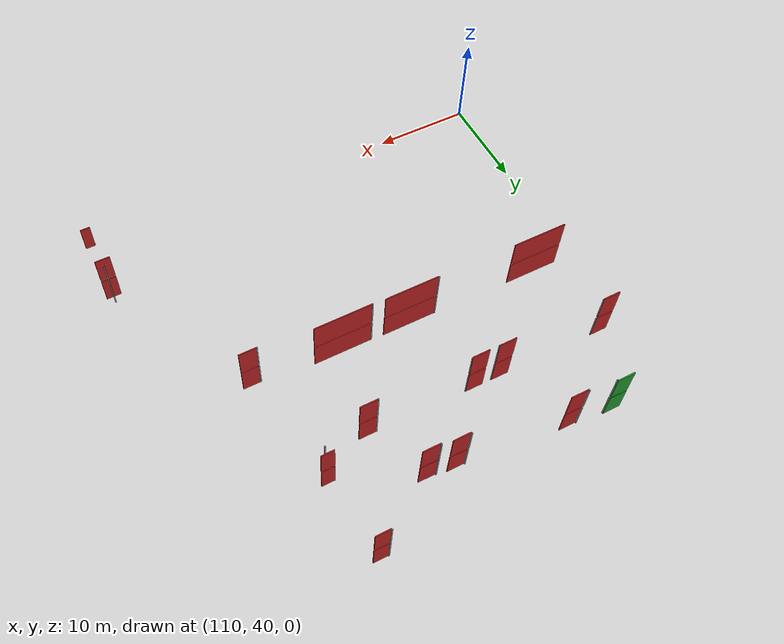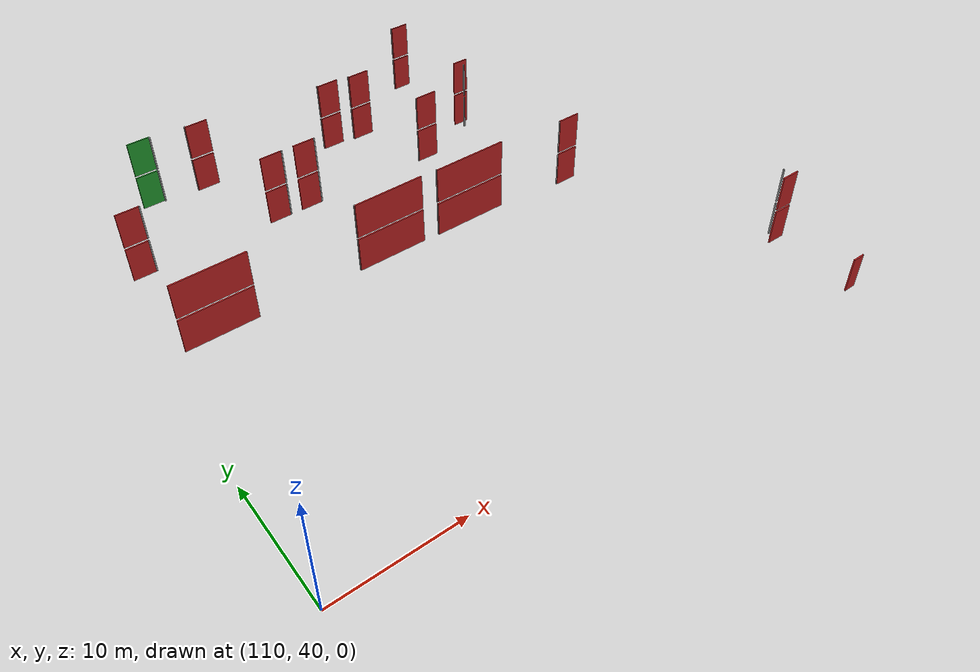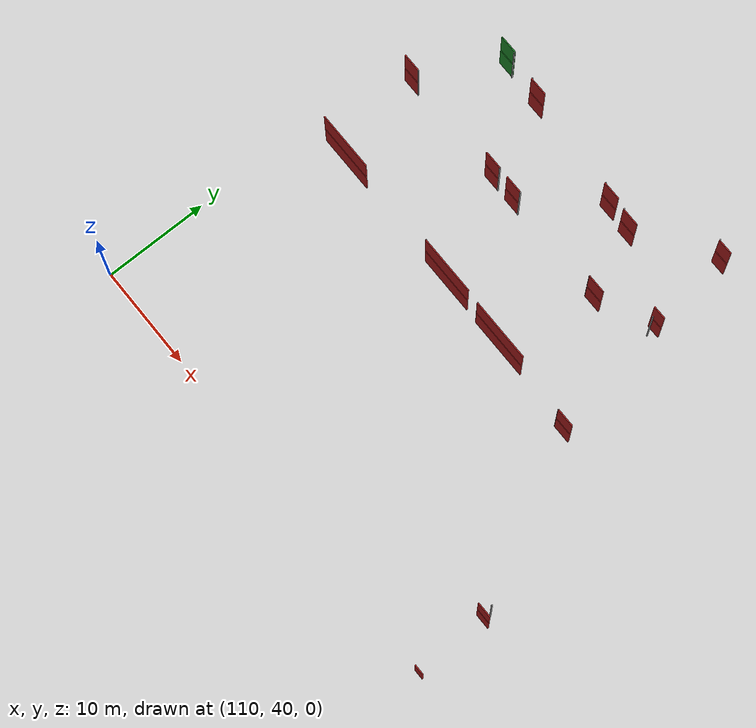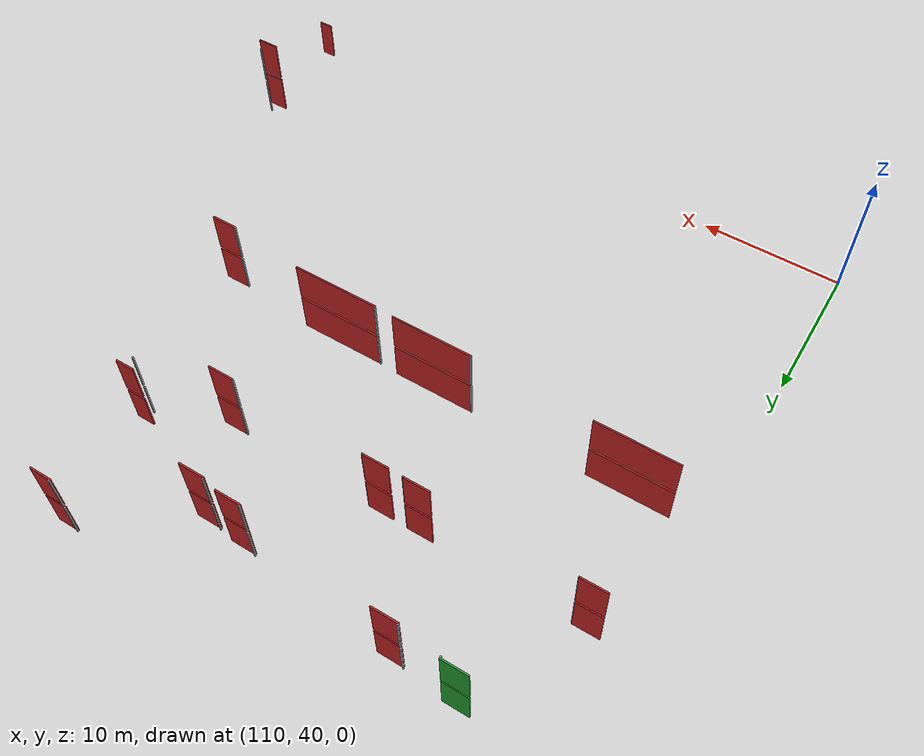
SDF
<sdf version="1.6">
 <world name="default">
  <model name="door_153.8_39.5_0.0">
   <static>false</static>
   <pose>153.77499999999418 38.99500000011176 1.5 0 0 0</pose>
   <link name="door_link">
    <gravity>false</gravity>
    <visual name="door_visual">
     <geometry><box><size>0.9960923654221514 0.1 3</size></box></geometry>
     <material>
      <script><uri>file://media/materials/scripts/gazebo.material</uri><name>Gazebo/Red</name></script>
     </material>
    </visual>
   </link>
  </model>
  <model name="pivot_153.8_46.7_0.0">
   <static>true</static>
   <pose>153.75 46.669999999925494 1.5 0 0 0</pose>
   <link name="pivot_link">
    <visual name="pivot_visual"><geometry><box><size>0.1 0.1 3</size></box></geometry></visual>
   </link>
  </model>
  <model name="door_153.8_46.7_0.0">
   <static>false</static>
   <pose>153.6600000000035 45.92999999993481 1.5 0 0 0</pose>
   <link name="door_link">
    <gravity>false</gravity>
    <visual name="door_visual">
     <geometry><box><size>1.4909057649436974 0.1 3</size></box></geometry>
     <material>
      <script><uri>file://media/materials/scripts/gazebo.material</uri><name>Gazebo/Red</name></script>
     </material>
    </visual>
   </link>
  </model>
  <model name="pivot_134.6_76.9_0.0">
   <static>true</static>
   <pose>134.59999999997672 76.87999999988824 1.5 0 0 0</pose>
   <link name="pivot_link">
    <visual name="pivot_visual"><geometry><box><size>0.1 0.1 3</size></box></geometry></visual>
   </link>
  </model>
  <model name="door_134.6_76.9_0.0">
   <static>false</static>
   <pose>135.49499999999534 76.79000000003725 1.5 0 0 0</pose>
   <link name="door_link">
    <gravity>false</gravity>
    <visual name="door_visual">
     <geometry><box><size>1.799027515083101 0.1 3</size></box></geometry>
     <material>
      <script><uri>file://media/materials/scripts/gazebo.material</uri><name>Gazebo/Red</name></script>
     </material>
    </visual>
   </link>
  </model>
  <model name="pivot_131.8_77.2_0.0">
   <static>true</static>
   <pose>131.80999999999767 77.16000000014901 1.5 0 0 0</pose>
   <link name="pivot_link">
    <visual name="pivot_visual"><geometry><box><size>0.1 0.1 3</size></box></geometry></visual>
   </link>
  </model>
  <model name="door_131.8_77.2_0.0">
   <static>false</static>
   <pose>132.7049999999872 77.07000000006519 1.5 0 0 0</pose>
   <link name="door_link">
    <gravity>false</gravity>
    <visual name="door_visual">
     <geometry><box><size>1.7990275150717767 0.1 3</size></box></geometry>
     <material>
      <script><uri>file://media/materials/scripts/gazebo.material</uri><name>Gazebo/Red</name></script>
     </material>
    </visual>
   </link>
  </model>
  <model name="pivot_120.6_78.3_0.0">
   <static>true</static>
   <pose>120.64000000001397 78.29999999981374 1.5 0 0 0</pose>
   <link name="pivot_link">
    <visual name="pivot_visual"><geometry><box><size>0.1 0.1 3</size></box></geometry></visual>
   </link>
  </model>
  <model name="door_120.6_78.3_0.0">
   <static>false</static>
   <pose>121.54000000000815 78.20999999996275 1.5 0 0 0</pose>
   <link name="door_link">
    <gravity>false</gravity>
    <visual name="door_visual">
     <geometry><box><size>1.808977611760522 0.1 3</size></box></geometry>
     <material>
      <script><uri>file://media/materials/scripts/gazebo.material</uri><name>Gazebo/Red</name></script>
     </material>
    </visual>
   </link>
  </model>
  <model name="pivot_117.9_78.6_0.0">
   <static>true</static>
   <pose>117.88000000000466 78.56999999983236 1.5 0 0 0</pose>
   <link name="pivot_link">
    <visual name="pivot_visual"><geometry><box><size>0.1 0.1 3</size></box></geometry></visual>
   </link>
  </model>
  <model name="door_117.9_78.6_0.0">
   <static>false</static>
   <pose>116.98499999998603 78.65999999968335 1.5 0 0 0</pose>
   <link name="door_link">
    <gravity>false</gravity>
    <visual name="door_visual">
     <geometry><box><size>1.799027515083101 0.1 3</size></box></geometry>
     <material>
      <script><uri>file://media/materials/scripts/gazebo.material</uri><name>Gazebo/Green</name></script>
     </material>
    </visual>
   </link>
  </model>
  <model name="pivot_141.8_81.4_0.0">
   <static>true</static>
   <pose>141.79999999998836 81.41000000014901 1.5 0 0 0</pose>
   <link name="pivot_link">
    <visual name="pivot_visual"><geometry><box><size>0.1 0.1 3</size></box></geometry></visual>
   </link>
  </model>
  <model name="door_141.8_81.4_0.0">
   <static>false</static>
   <pose>142.54999999998836 81.33499999996275 1.5 0 0 0</pose>
   <link name="door_link">
    <gravity>false</gravity>
    <visual name="door_visual">
     <geometry><box><size>1.5074813432052014 0.1 3</size></box></geometry>
     <material>
      <script><uri>file://media/materials/scripts/gazebo.material</uri><name>Gazebo/Red</name></script>
     </material>
    </visual>
   </link>
  </model>
  <model name="pivot_137.3_70.8_0.0">
   <static>true</static>
   <pose>137.30999999999767 70.79000000003725 1.5 0 0 0</pose>
   <link name="pivot_link">
    <visual name="pivot_visual"><geometry><box><size>0.1 0.1 3</size></box></geometry></visual>
   </link>
  </model>
  <model name="door_137.3_70.8_0.0">
   <static>false</static>
   <pose>138.2149999999965 70.78000000002794 1.5 0 0 0</pose>
   <link name="door_link">
    <gravity>false</gravity>
    <visual name="door_visual">
     <geometry><box><size>1.810110493862824 0.1 3</size></box></geometry>
     <material>
      <script><uri>file://media/materials/scripts/gazebo.material</uri><name>Gazebo/Red</name></script>
     </material>
    </visual>
   </link>
  </model>
  <model name="pivot_128.0_70.9_0.0">
   <static>true</static>
   <pose>127.95000000001164 70.93999999994412 1.5 0 0 0</pose>
   <link name="pivot_link">
    <visual name="pivot_visual"><geometry><box><size>0.1 0.1 3</size></box></geometry></visual>
   </link>
  </model>
  <model name="door_128.0_70.9_0.0">
   <static>false</static>
   <pose>127.05000000001746 70.9550000000745 1.5 0 0 0</pose>
   <link name="door_link">
    <gravity>false</gravity>
    <visual name="door_visual">
     <geometry><box><size>1.8002499826340055 0.1 3</size></box></geometry>
     <material>
      <script><uri>file://media/materials/scripts/gazebo.material</uri><name>Gazebo/Red</name></script>
     </material>
    </visual>
   </link>
  </model>
  <model name="pivot_125.2_71.0_0.0">
   <static>true</static>
   <pose>125.1699999999837 70.97999999998137 1.5 0 0 0</pose>
   <link name="pivot_link">
    <visual name="pivot_visual"><geometry><box><size>0.1 0.1 3</size></box></geometry></visual>
   </link>
  </model>
  <model name="door_125.2_71.0_0.0">
   <static>false</static>
   <pose>124.26499999998487 70.98999999999069 1.5 0 0 0</pose>
   <link name="door_link">
    <gravity>false</gravity>
    <visual name="door_visual">
     <geometry><box><size>1.810110493862824 0.1 3</size></box></geometry>
     <material>
      <script><uri>file://media/materials/scripts/gazebo.material</uri><name>Gazebo/Red</name></script>
     </material>
    </visual>
   </link>
  </model>
  <model name="pivot_113.9_71.1_0.0">
   <static>true</static>
   <pose>113.94000000000233 71.12000000011176 1.5 0 0 0</pose>
   <link name="pivot_link">
    <visual name="pivot_visual"><geometry><box><size>0.1 0.1 3</size></box></geometry></visual>
   </link>
  </model>
  <model name="door_113.9_71.1_0.0">
   <static>false</static>
   <pose>113.03500000000349 71.13000000012107 1.5 0 0 0</pose>
   <link name="door_link">
    <gravity>false</gravity>
    <visual name="door_visual">
     <geometry><box><size>1.810110493862824 0.1 3</size></box></geometry>
     <material>
      <script><uri>file://media/materials/scripts/gazebo.material</uri><name>Gazebo/Red</name></script>
     </material>
    </visual>
   </link>
  </model>
  <model name="pivot_143.4_72.6_0.0">
   <static>true</static>
   <pose>143.39000000001397 72.64000000013039 1.5 0 0 0</pose>
   <link name="pivot_link">
    <visual name="pivot_visual"><geometry><box><size>0.1 0.1 3</size></box></geometry></visual>
   </link>
  </model>
  <model name="door_143.4_72.6_0.0">
   <static>false</static>
   <pose>143.4550000000163 73.29500000015832 1.5 0 0 0</pose>
   <link name="door_link">
    <gravity>false</gravity>
    <visual name="door_visual">
     <geometry><box><size>1.3164345787571878 0.1 3</size></box></geometry>
     <material>
      <script><uri>file://media/materials/scripts/gazebo.material</uri><name>Gazebo/Red</name></script>
     </material>
    </visual>
   </link>
  </model>
  <model name="door_112.2_62.3_0.0">
   <static>false</static>
   <pose>115.0 62.23999999999069 1.5 0 0 0</pose>
   <link name="door_link">
    <gravity>false</gravity>
    <visual name="door_visual">
     <geometry><box><size>5.700561375812611 0.1 3</size></box></geometry>
     <material>
      <script><uri>file://media/materials/scripts/gazebo.material</uri><name>Gazebo/Red</name></script>
     </material>
    </visual>
   </link>
  </model>
  <model name="pivot_126.2_62.1_0.0">
   <static>true</static>
   <pose>126.1699999999837 62.08999999985099 1.5 0 0 0</pose>
   <link name="pivot_link">
    <visual name="pivot_visual"><geometry><box><size>0.1 0.1 3</size></box></geometry></visual>
   </link>
  </model>
  <model name="door_126.2_62.1_0.0">
   <static>false</static>
   <pose>129.01999999998952 62.049999999813735 1.5 0 0 0</pose>
   <link name="door_link">
    <gravity>false</gravity>
    <visual name="door_visual">
     <geometry><box><size>5.7005613758773475 0.1 3</size></box></geometry>
     <material>
      <script><uri>file://media/materials/scripts/gazebo.material</uri><name>Gazebo/Red</name></script>
     </material>
    </visual>
   </link>
  </model>
  <model name="pivot_133.2_62.0_0.0">
   <static>true</static>
   <pose>133.17999999999302 61.99000000022352 1.5 0 0 0</pose>
   <link name="pivot_link">
    <visual name="pivot_visual"><geometry><box><size>0.1 0.1 3</size></box></geometry></visual>
   </link>
  </model>
  <model name="door_133.2_62.0_0.0">
   <static>false</static>
   <pose>136.19500000000698 61.950000000186265 1.5 0 0 0</pose>
   <link name="door_link">
    <gravity>false</gravity>
    <visual name="door_visual">
     <geometry><box><size>6.030530656612972 0.1 3</size></box></geometry>
     <material>
      <script><uri>file://media/materials/scripts/gazebo.material</uri><name>Gazebo/Red</name></script>
     </material>
    </visual>
   </link>
  </model>
  <model name="pivot_144.5_61.4_0.0">
   <static>true</static>
   <pose>144.54999999998836 61.37000000011176 1.5 0 0 0</pose>
   <link name="pivot_link">
    <visual name="pivot_visual"><geometry><box><size>0.1 0.1 3</size></box></geometry></visual>
   </link>
  </model>
  <model name="door_144.5_61.4_0.0">
   <static>false</static>
   <pose>145.44999999998254 61.360000000102445 1.5 0 0 0</pose>
   <link name="door_link">
    <gravity>false</gravity>
    <visual name="door_visual">
     <geometry><box><size>1.8001111076705336 0.1 3</size></box></geometry>
     <material>
      <script><uri>file://media/materials/scripts/gazebo.material</uri><name>Gazebo/Red</name></script>
     </material>
    </visual>
   </link>
  </model>
  <model name="pivot_153.8_46.7_3.2">
   <static>true</static>
   <pose>153.75 46.669999999925494 4.7 0 0 0</pose>
   <link name="pivot_link">
    <visual name="pivot_visual"><geometry><box><size>0.1 0.1 3</size></box></geometry></visual>
   </link>
  </model>
  <model name="door_153.8_46.7_3.2">
   <static>false</static>
   <pose>153.6600000000035 45.92999999993481 4.7 0 0 0</pose>
   <link name="door_link">
    <gravity>false</gravity>
    <visual name="door_visual">
     <geometry><box><size>1.4909057649436974 0.1 3</size></box></geometry>
     <material>
      <script><uri>file://media/materials/scripts/gazebo.material</uri><name>Gazebo/Red</name></script>
     </material>
    </visual>
   </link>
  </model>
  <model name="pivot_134.6_76.9_3.2">
   <static>true</static>
   <pose>134.59999999997672 76.87999999988824 4.7 0 0 0</pose>
   <link name="pivot_link">
    <visual name="pivot_visual"><geometry><box><size>0.1 0.1 3</size></box></geometry></visual>
   </link>
  </model>
  <model name="door_134.6_76.9_3.2">
   <static>false</static>
   <pose>135.49499999999534 76.79000000003725 4.7 0 0 0</pose>
   <link name="door_link">
    <gravity>false</gravity>
    <visual name="door_visual">
     <geometry><box><size>1.799027515083101 0.1 3</size></box></geometry>
     <material>
      <script><uri>file://media/materials/scripts/gazebo.material</uri><name>Gazebo/Red</name></script>
     </material>
    </visual>
   </link>
  </model>
  <model name="pivot_131.8_77.2_3.2">
   <static>true</static>
   <pose>131.80999999999767 77.16000000014901 4.7 0 0 0</pose>
   <link name="pivot_link">
    <visual name="pivot_visual"><geometry><box><size>0.1 0.1 3</size></box></geometry></visual>
   </link>
  </model>
  <model name="door_131.8_77.2_3.2">
   <static>false</static>
   <pose>132.7049999999872 77.07000000006519 4.7 0 0 0</pose>
   <link name="door_link">
    <gravity>false</gravity>
    <visual name="door_visual">
     <geometry><box><size>1.7990275150717767 0.1 3</size></box></geometry>
     <material>
      <script><uri>file://media/materials/scripts/gazebo.material</uri><name>Gazebo/Red</name></script>
     </material>
    </visual>
   </link>
  </model>
  <model name="pivot_120.6_78.3_3.2">
   <static>true</static>
   <pose>120.64000000001397 78.29999999981374 4.7 0 0 0</pose>
   <link name="pivot_link">
    <visual name="pivot_visual"><geometry><box><size>0.1 0.1 3</size></box></geometry></visual>
   </link>
  </model>
  <model name="door_120.6_78.3_3.2">
   <static>false</static>
   <pose>121.54000000000815 78.20999999996275 4.7 0 0 0</pose>
   <link name="door_link">
    <gravity>false</gravity>
    <visual name="door_visual">
     <geometry><box><size>1.808977611760522 0.1 3</size></box></geometry>
     <material>
      <script><uri>file://media/materials/scripts/gazebo.material</uri><name>Gazebo/Red</name></script>
     </material>
    </visual>
   </link>
  </model>
  <model name="pivot_117.9_78.6_3.2">
   <static>true</static>
   <pose>117.88000000000466 78.56999999983236 4.7 0 0 0</pose>
   <link name="pivot_link">
    <visual name="pivot_visual"><geometry><box><size>0.1 0.1 3</size></box></geometry></visual>
   </link>
  </model>
  <model name="door_117.9_78.6_3.2">
   <static>false</static>
   <pose>116.98499999998603 78.65999999968335 4.7 0 0 0</pose>
   <link name="door_link">
    <gravity>false</gravity>
    <visual name="door_visual">
     <geometry><box><size>1.799027515083101 0.1 3</size></box></geometry>
     <material>
      <script><uri>file://media/materials/scripts/gazebo.material</uri><name>Gazebo/Green</name></script>
     </material>
    </visual>
   </link>
  </model>
  <model name="pivot_141.8_81.4_3.2">
   <static>true</static>
   <pose>141.79999999998836 81.41000000014901 4.7 0 0 0</pose>
   <link name="pivot_link">
    <visual name="pivot_visual"><geometry><box><size>0.1 0.1 3</size></box></geometry></visual>
   </link>
  </model>
  <model name="door_141.8_81.4_3.2">
   <static>false</static>
   <pose>142.54999999998836 81.33499999996275 4.7 0 0 0</pose>
   <link name="door_link">
    <gravity>false</gravity>
    <visual name="door_visual">
     <geometry><box><size>1.5074813432052014 0.1 3</size></box></geometry>
     <material>
      <script><uri>file://media/materials/scripts/gazebo.material</uri><name>Gazebo/Red</name></script>
     </material>
    </visual>
   </link>
  </model>
  <model name="pivot_137.3_70.8_3.2">
   <static>true</static>
   <pose>137.30999999999767 70.79000000003725 4.7 0 0 0</pose>
   <link name="pivot_link">
    <visual name="pivot_visual"><geometry><box><size>0.1 0.1 3</size></box></geometry></visual>
   </link>
  </model>
  <model name="door_137.3_70.8_3.2">
   <static>false</static>
   <pose>138.2149999999965 70.78000000002794 4.7 0 0 0</pose>
   <link name="door_link">
    <gravity>false</gravity>
    <visual name="door_visual">
     <geometry><box><size>1.810110493862824 0.1 3</size></box></geometry>
     <material>
      <script><uri>file://media/materials/scripts/gazebo.material</uri><name>Gazebo/Red</name></script>
     </material>
    </visual>
   </link>
  </model>
  <model name="pivot_128.0_70.9_3.2">
   <static>true</static>
   <pose>127.95000000001164 70.93999999994412 4.7 0 0 0</pose>
   <link name="pivot_link">
    <visual name="pivot_visual"><geometry><box><size>0.1 0.1 3</size></box></geometry></visual>
   </link>
  </model>
  <model name="door_128.0_70.9_3.2">
   <static>false</static>
   <pose>127.05000000001746 70.9550000000745 4.7 0 0 0</pose>
   <link name="door_link">
    <gravity>false</gravity>
    <visual name="door_visual">
     <geometry><box><size>1.8002499826340055 0.1 3</size></box></geometry>
     <material>
      <script><uri>file://media/materials/scripts/gazebo.material</uri><name>Gazebo/Red</name></script>
     </material>
    </visual>
   </link>
  </model>
  <model name="pivot_125.2_71.0_3.2">
   <static>true</static>
   <pose>125.1699999999837 70.97999999998137 4.7 0 0 0</pose>
   <link name="pivot_link">
    <visual name="pivot_visual"><geometry><box><size>0.1 0.1 3</size></box></geometry></visual>
   </link>
  </model>
  <model name="door_125.2_71.0_3.2">
   <static>false</static>
   <pose>124.26499999998487 70.98999999999069 4.7 0 0 0</pose>
   <link name="door_link">
    <gravity>false</gravity>
    <visual name="door_visual">
     <geometry><box><size>1.810110493862824 0.1 3</size></box></geometry>
     <material>
      <script><uri>file://media/materials/scripts/gazebo.material</uri><name>Gazebo/Red</name></script>
     </material>
    </visual>
   </link>
  </model>
  <model name="pivot_113.9_71.1_3.2">
   <static>true</static>
   <pose>113.94000000000233 71.12000000011176 4.7 0 0 0</pose>
   <link name="pivot_link">
    <visual name="pivot_visual"><geometry><box><size>0.1 0.1 3</size></box></geometry></visual>
   </link>
  </model>
  <model name="door_113.9_71.1_3.2">
   <static>false</static>
   <pose>113.03500000000349 71.13000000012107 4.7 0 0 0</pose>
   <link name="door_link">
    <gravity>false</gravity>
    <visual name="door_visual">
     <geometry><box><size>1.810110493862824 0.1 3</size></box></geometry>
     <material>
      <script><uri>file://media/materials/scripts/gazebo.material</uri><name>Gazebo/Red</name></script>
     </material>
    </visual>
   </link>
  </model>
  <model name="pivot_143.4_72.6_3.2">
   <static>true</static>
   <pose>143.39000000001397 72.64000000013039 4.7 0 0 0</pose>
   <link name="pivot_link">
    <visual name="pivot_visual"><geometry><box><size>0.1 0.1 3</size></box></geometry></visual>
   </link>
  </model>
  <model name="door_143.4_72.6_3.2">
   <static>false</static>
   <pose>143.4550000000163 73.29500000015832 4.7 0 0 0</pose>
   <link name="door_link">
    <gravity>false</gravity>
    <visual name="door_visual">
     <geometry><box><size>1.3164345787571878 0.1 3</size></box></geometry>
     <material>
      <script><uri>file://media/materials/scripts/gazebo.material</uri><name>Gazebo/Red</name></script>
     </material>
    </visual>
   </link>
  </model>
  <model name="door_112.2_62.3_3.2">
   <static>false</static>
   <pose>115.0 62.23999999999069 4.7 0 0 0</pose>
   <link name="door_link">
    <gravity>false</gravity>
    <visual name="door_visual">
     <geometry><box><size>5.700561375812611 0.1 3</size></box></geometry>
     <material>
      <script><uri>file://media/materials/scripts/gazebo.material</uri><name>Gazebo/Red</name></script>
     </material>
    </visual>
   </link>
  </model>
  <model name="pivot_126.2_62.1_3.2">
   <static>true</static>
   <pose>126.1699999999837 62.08999999985099 4.7 0 0 0</pose>
   <link name="pivot_link">
    <visual name="pivot_visual"><geometry><box><size>0.1 0.1 3</size></box></geometry></visual>
   </link>
  </model>
  <model name="door_126.2_62.1_3.2">
   <static>false</static>
   <pose>129.01999999998952 62.049999999813735 4.7 0 0 0</pose>
   <link name="door_link">
    <gravity>false</gravity>
    <visual name="door_visual">
     <geometry><box><size>5.7005613758773475 0.1 3</size></box></geometry>
     <material>
      <script><uri>file://media/materials/scripts/gazebo.material</uri><name>Gazebo/Red</name></script>
     </material>
    </visual>
   </link>
  </model>
  <model name="pivot_133.2_62.0_3.2">
   <static>true</static>
   <pose>133.17999999999302 61.99000000022352 4.7 0 0 0</pose>
   <link name="pivot_link">
    <visual name="pivot_visual"><geometry><box><size>0.1 0.1 3</size></box></geometry></visual>
   </link>
  </model>
  <model name="door_133.2_62.0_3.2">
   <static>false</static>
   <pose>136.19500000000698 61.950000000186265 4.7 0 0 0</pose>
   <link name="door_link">
    <gravity>false</gravity>
    <visual name="door_visual">
     <geometry><box><size>6.030530656612972 0.1 3</size></box></geometry>
     <material>
      <script><uri>file://media/materials/scripts/gazebo.material</uri><name>Gazebo/Red</name></script>
     </material>
    </visual>
   </link>
  </model>
  <model name="pivot_144.5_61.4_3.2">
   <static>true</static>
   <pose>144.54999999998836 61.37000000011176 4.7 0 0 0</pose>
   <link name="pivot_link">
    <visual name="pivot_visual"><geometry><box><size>0.1 0.1 3</size></box></geometry></visual>
   </link>
  </model>
  <model name="door_144.5_61.4_3.2">
   <static>false</static>
   <pose>145.44999999998254 61.360000000102445 4.7 0 0 0</pose>
   <link name="door_link">
    <gravity>false</gravity>
    <visual name="door_visual">
     <geometry><box><size>1.8001111076705336 0.1 3</size></box></geometry>
     <material>
      <script><uri>file://media/materials/scripts/gazebo.material</uri><name>Gazebo/Red</name></script>
     </material>
    </visual>
   </link>
  </model>
 </world>
</sdf>
